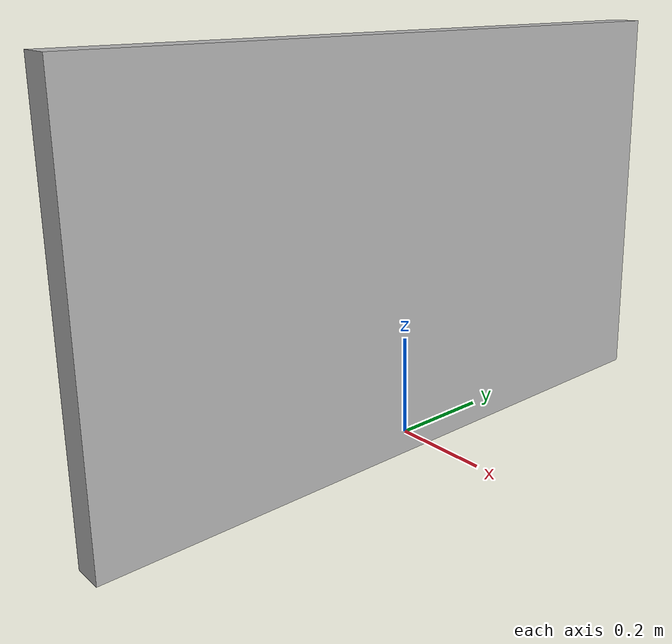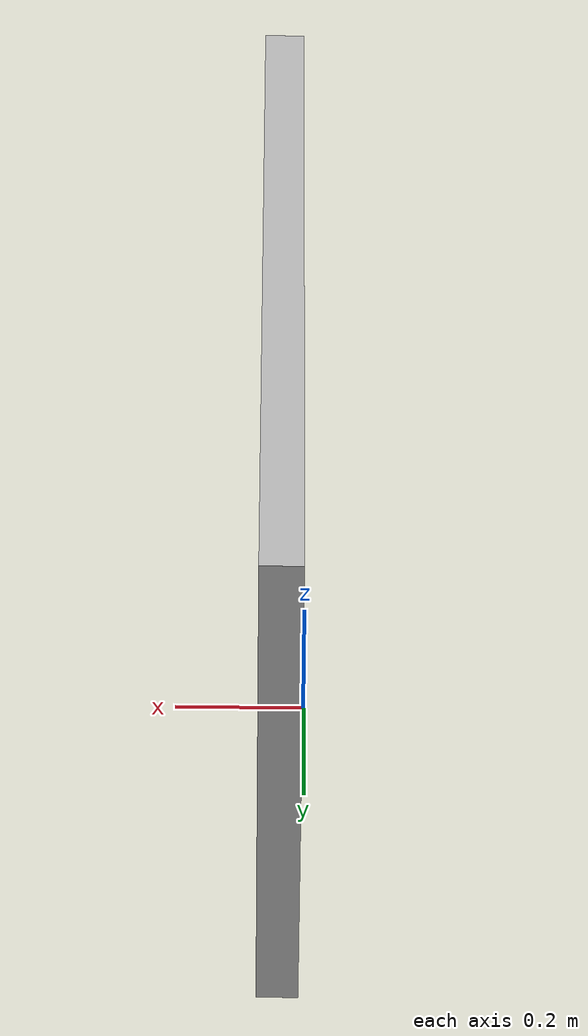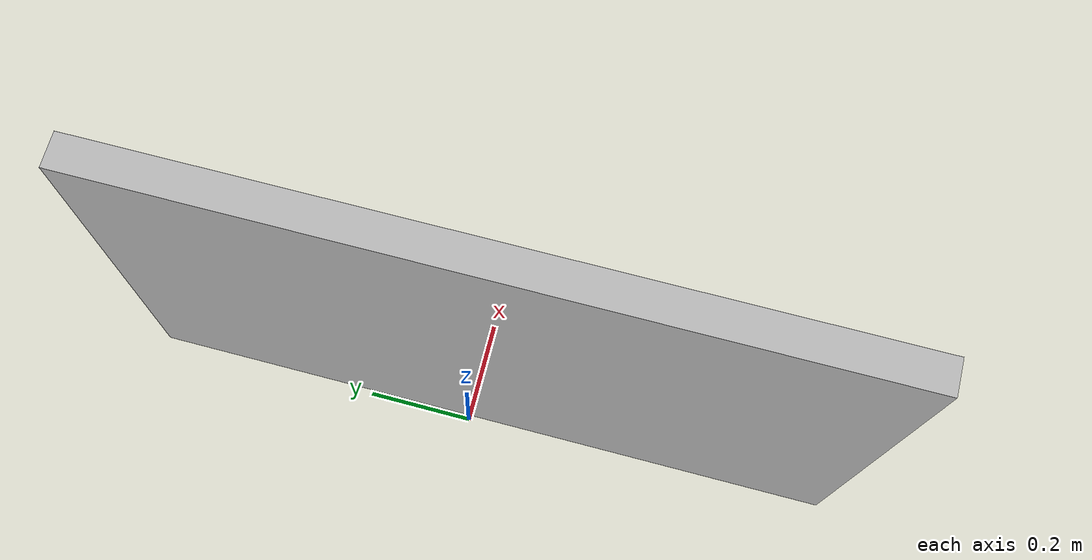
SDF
<?xml version="1.0" ?>
<sdf version="1.6">
  <model name="TV_01">
    <link name="link">
      <inertial>
        <mass>1</mass>
      </inertial>
      <collision name="collision">
        <geometry>
          <mesh>
            <uri>model://TV_01/meshes/TV_01_collision.DAE</uri>
            <scale>1 1 1</scale>
          </mesh>
        </geometry>
      </collision>
      <visual name="visual">
	    <geometry>
          <mesh>
            <uri>model://TV_01/meshes/TV_01_visual.DAE</uri>
          </mesh>
        </geometry>
      <meta> <layer> 2 </layer></meta>
</visual>
    </link>
	<static>1</static>
  </model>
</sdf>
